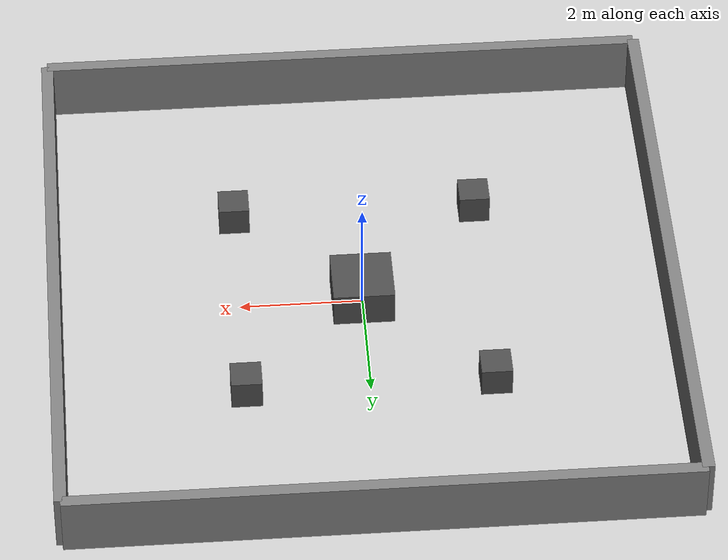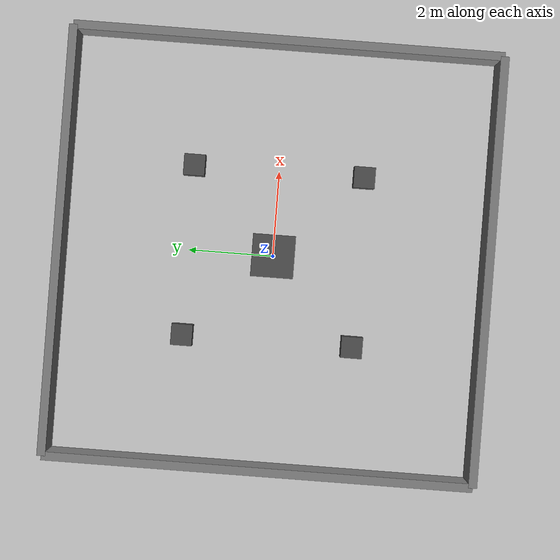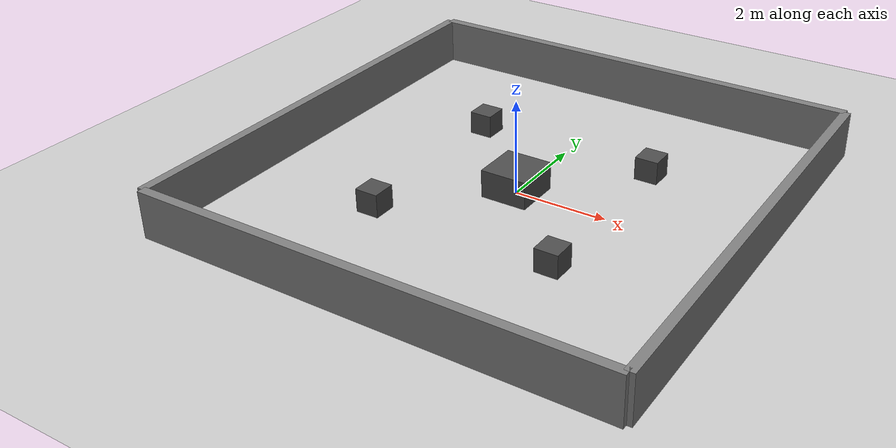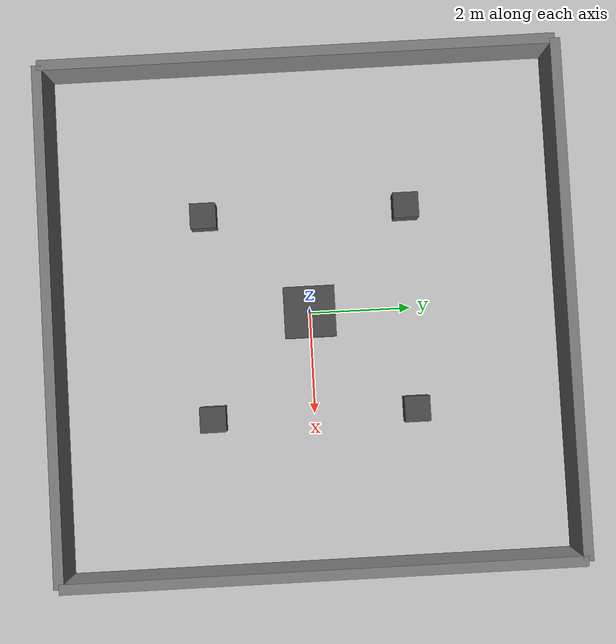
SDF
<?xml version="1.0"?>
<sdf version="1.10">
  <world name="kvn_robot_world">

    <!-- Server-side systems (a bare world loads none of these) -->
    <plugin filename="gz-sim-physics-system" name="gz::sim::systems::Physics" />
    <plugin filename="gz-sim-user-commands-system" name="gz::sim::systems::UserCommands" />
    <plugin filename="gz-sim-scene-broadcaster-system" name="gz::sim::systems::SceneBroadcaster" />
    <plugin filename="gz-sim-imu-system" name="gz::sim::systems::Imu" />
    <plugin filename="gz-sim-sensors-system" name="gz::sim::systems::Sensors">
      <render_engine>ogre2</render_engine>
    </plugin>

    <!-- Physics engine -->
    <physics name="default_physics" type="ode">
      <max_step_size>0.001</max_step_size>
      <real_time_factor>1</real_time_factor>
      <real_time_update_rate>1000</real_time_update_rate>
    </physics>

    <!-- Scene properties -->
    <scene>
      <ambient>0.4 0.4 0.4 1</ambient>
      <background>0.7 0.7 0.7 1</background>
      <shadows>true</shadows>
    </scene>

    <!-- Lighting -->
    <light type="directional" name="sun">
      <cast_shadows>true</cast_shadows>
      <pose>0 0 10 0 0 0</pose>
      <diffuse>0.8 0.8 0.8 1</diffuse>
      <specular>0.2 0.2 0.2 1</specular>
      <attenuation>
        <range>1000</range>
        <constant>0.9</constant>
        <linear>0.01</linear>
        <quadratic>0.001</quadratic>
      </attenuation>
      <direction>-0.5 0.5 -1</direction>
    </light>

    <!-- Ground plane -->
    <model name="ground_plane">
      <static>true</static>
      <link name="link">
        <collision name="collision">
          <geometry>
            <plane>
              <normal>0 0 1</normal>
              <size>100 100</size>
            </plane>
          </geometry>
          <surface>
            <friction>
              <ode>
                <mu>0.8</mu>
                <mu2>0.3</mu2>
              </ode>
            </friction>
          </surface>
        </collision>
        <visual name="visual">
          <geometry>
            <plane>
              <normal>0 0 1</normal>
              <size>100 100</size>
            </plane>
          </geometry>
          <material>
            <ambient>0.8 0.8 0.8 1</ambient>
            <diffuse>0.8 0.8 0.8 1</diffuse>
            <specular>0.8 0.8 0.8 1</specular>
          </material>
        </visual>
      </link>
    </model>

    <!-- Outer boundary walls (4 walls forming 10m x 10m arena) -->
    <model name="wall_north">
      <static>true</static>
      <pose>0 5 0.5 0 0 0</pose>
      <link name="link">
        <collision name="collision">
          <geometry>
            <box>
              <size>10 0.2 1</size>
            </box>
          </geometry>
        </collision>
        <visual name="visual">
          <geometry>
            <box>
              <size>10 0.2 1</size>
            </box>
          </geometry>
          <material>
            <ambient>0.5 0.5 0.5 1</ambient>
            <diffuse>0.5 0.5 0.5 1</diffuse>
          </material>
        </visual>
      </link>
    </model>

    <model name="wall_south">
      <static>true</static>
      <pose>0 -5 0.5 0 0 0</pose>
      <link name="link">
        <collision name="collision">
          <geometry>
            <box>
              <size>10 0.2 1</size>
            </box>
          </geometry>
        </collision>
        <visual name="visual">
          <geometry>
            <box>
              <size>10 0.2 1</size>
            </box>
          </geometry>
          <material>
            <ambient>0.5 0.5 0.5 1</ambient>
            <diffuse>0.5 0.5 0.5 1</diffuse>
          </material>
        </visual>
      </link>
    </model>

    <model name="wall_east">
      <static>true</static>
      <pose>5 0 0.5 0 0 0</pose>
      <link name="link">
        <collision name="collision">
          <geometry>
            <box>
              <size>0.2 10 1</size>
            </box>
          </geometry>
        </collision>
        <visual name="visual">
          <geometry>
            <box>
              <size>0.2 10 1</size>
            </box>
          </geometry>
          <material>
            <ambient>0.5 0.5 0.5 1</ambient>
            <diffuse>0.5 0.5 0.5 1</diffuse>
          </material>
        </visual>
      </link>
    </model>

    <model name="wall_west">
      <static>true</static>
      <pose>-5 0 0.5 0 0 0</pose>
      <link name="link">
        <collision name="collision">
          <geometry>
            <box>
              <size>0.2 10 1</size>
            </box>
          </geometry>
        </collision>
        <visual name="visual">
          <geometry>
            <box>
              <size>0.2 10 1</size>
            </box>
          </geometry>
          <material>
            <ambient>0.5 0.5 0.5 1</ambient>
            <diffuse>0.5 0.5 0.5 1</diffuse>
          </material>
        </visual>
      </link>
    </model>

    <!-- Interior obstacles (creates loop closure scenario) -->
    <model name="obstacle_center">
      <static>true</static>
      <pose>0 0 0.3 0 0 0</pose>
      <link name="link">
        <collision name="collision">
          <geometry>
            <box>
              <size>1 1 0.6</size>
            </box>
          </geometry>
        </collision>
        <visual name="visual">
          <geometry>
            <box>
              <size>1 1 0.6</size>
            </box>
          </geometry>
          <material>
            <ambient>0.3 0.3 0.3 1</ambient>
            <diffuse>0.3 0.3 0.3 1</diffuse>
          </material>
        </visual>
      </link>
    </model>

    <model name="obstacle_ne">
      <static>true</static>
      <pose>2 2 0.25 0 0 0</pose>
      <link name="link">
        <collision name="collision">
          <geometry>
            <box>
              <size>0.5 0.5 0.5</size>
            </box>
          </geometry>
        </collision>
        <visual name="visual">
          <geometry>
            <box>
              <size>0.5 0.5 0.5</size>
            </box>
          </geometry>
          <material>
            <ambient>0.3 0.3 0.3 1</ambient>
            <diffuse>0.3 0.3 0.3 1</diffuse>
          </material>
        </visual>
      </link>
    </model>

    <model name="obstacle_nw">
      <static>true</static>
      <pose>-2 2 0.25 0 0 0</pose>
      <link name="link">
        <collision name="collision">
          <geometry>
            <box>
              <size>0.5 0.5 0.5</size>
            </box>
          </geometry>
        </collision>
        <visual name="visual">
          <geometry>
            <box>
              <size>0.5 0.5 0.5</size>
            </box>
          </geometry>
          <material>
            <ambient>0.3 0.3 0.3 1</ambient>
            <diffuse>0.3 0.3 0.3 1</diffuse>
          </material>
        </visual>
      </link>
    </model>

    <model name="obstacle_se">
      <static>true</static>
      <pose>2 -2 0.25 0 0 0</pose>
      <link name="link">
        <collision name="collision">
          <geometry>
            <box>
              <size>0.5 0.5 0.5</size>
            </box>
          </geometry>
        </collision>
        <visual name="visual">
          <geometry>
            <box>
              <size>0.5 0.5 0.5</size>
            </box>
          </geometry>
          <material>
            <ambient>0.3 0.3 0.3 1</ambient>
            <diffuse>0.3 0.3 0.3 1</diffuse>
          </material>
        </visual>
      </link>
    </model>

    <model name="obstacle_sw">
      <static>true</static>
      <pose>-2 -2 0.25 0 0 0</pose>
      <link name="link">
        <collision name="collision">
          <geometry>
            <box>
              <size>0.5 0.5 0.5</size>
            </box>
          </geometry>
        </collision>
        <visual name="visual">
          <geometry>
            <box>
              <size>0.5 0.5 0.5</size>
            </box>
          </geometry>
          <material>
            <ambient>0.3 0.3 0.3 1</ambient>
            <diffuse>0.3 0.3 0.3 1</diffuse>
          </material>
        </visual>
      </link>
    </model>

  </world>
</sdf>
